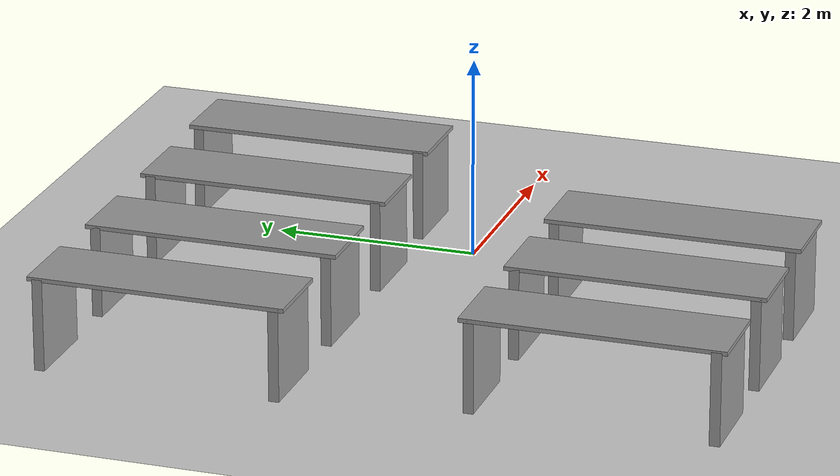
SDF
<sdf version="1.6">
 <world name="default">
  <model name="ground_plane">
   <static>1</static>
   <link name="link">
    <collision name="collision">
     <geometry><plane><normal>0 0 1</normal><size>100 100</size></plane></geometry>
     <surface><friction><ode><mu>100</mu><mu2>50</mu2></ode></friction></surface>
    </collision>
    <visual name="visual">
     <cast_shadows>0</cast_shadows>
     <geometry><plane><normal>0 0 1</normal><size>100 100</size></plane></geometry>
     <material>
      <script><uri>file://media/materials/scripts/gazebo.material</uri><name>Gazebo/Grey</name></script>
     </material>
    </visual>
   </link>
  </model>
  <model name="table_clone_2_clone_1">
   <link name="link">
    <inertial>
     <inertia><ixx>1</ixx><ixy>0</ixy><ixz>0</ixz><iyy>1</iyy><iyz>0</iyz><izz>1</izz></inertia>
     <mass>10</mass>
    </inertial>
    <visual name="visual1">
     <pose>0 0 0.95 0 -0 0</pose>
     <geometry><box><size>2.5 0.8 0.04</size></box></geometry>
     <material>
      <script><uri>file://media/materials/scripts/gazebo.material</uri><name>Gazebo/Grey</name></script>
      <ambient>1 1 1 1</ambient>
      <diffuse>1 1 1 1</diffuse>
      <specular>0.2 0.2 0.2 1</specular>
      <emissive>0 0 0 1</emissive>
      <shader type="vertex"><normal_map>__default__</normal_map></shader>
     </material>
    </visual>
    <visual name="ModelPreview_1::link::visual_12">
     <pose>1.15 0 0.5 0 -0 0</pose>
     <geometry><box><size>0.1 0.8 0.9</size></box></geometry>
     <material>
      <script><uri>file://media/materials/scripts/gazebo.material</uri><name>Gazebo/Grey</name></script>
      <ambient>0.3 0.3 0.3 1</ambient>
      <diffuse>0.7 0.7 0.7 1</diffuse>
      <specular>0.01 0.01 0.01 1</specular>
      <emissive>0 0 0 1</emissive>
      <shader type="vertex"><normal_map>__default__</normal_map></shader>
     </material>
    </visual>
    <visual name="back_right_leg">
     <pose>-1.15 0 0.5 0 -0 0</pose>
     <geometry><box><size>0.1 0.8 0.9</size></box></geometry>
     <material>
      <script><uri>file://media/materials/scripts/gazebo.material</uri><name>Gazebo/Grey</name></script>
      <ambient>0.3 0.3 0.3 1</ambient>
      <diffuse>0.7 0.7 0.7 1</diffuse>
      <specular>0.01 0.01 0.01 1</specular>
      <emissive>0 0 0 1</emissive>
      <shader type="vertex"><normal_map>__default__</normal_map></shader>
     </material>
    </visual>
    <collision name="collision_7">
     <pose>1.15 0 0.5 0 -0 0</pose>
     <geometry><box><size>0.1 0.8 0.9</size></box></geometry>
     <surface>
      <friction>
       <ode><mu>1</mu><mu2>1</mu2><fdir1>0 0 0</fdir1><slip1>0</slip1><slip2>0</slip2></ode>
       <torsional>
        <coefficient>1</coefficient>
        <patch_radius>0</patch_radius>
        <surface_radius>0</surface_radius>
        <use_patch_radius>1</use_patch_radius>
        <ode><slip>0</slip></ode>
       </torsional>
      </friction>
      <bounce><restitution_coefficient>0</restitution_coefficient><threshold>1e+06</threshold></bounce>
      <contact>
       <collide_without_contact>0</collide_without_contact>
       <collide_without_contact_bitmask>1</collide_without_contact_bitmask>
       <collide_bitmask>1</collide_bitmask>
       <ode>
        <soft_cfm>0</soft_cfm>
        <soft_erp>0.2</soft_erp>
        <kp>1e+13</kp>
        <kd>1</kd>
        <max_vel>0.01</max_vel>
        <min_depth>0</min_depth>
       </ode>
       <bullet>
        <split_impulse>1</split_impulse>
        <split_impulse_penetration_threshold>-0.01</split_impulse_penetration_threshold>
        <soft_cfm>0</soft_cfm>
        <soft_erp>0.2</soft_erp>
        <kp>1e+13</kp>
        <kd>1</kd>
       </bullet>
      </contact>
     </surface>
    </collision>
    <collision name="surface">
     <pose>0 0 0.95 0 -0 0</pose>
     <geometry><box><size>2.5 0.8 0.03</size></box></geometry>
     <surface>
      <friction>
       <ode><mu>0.6</mu><mu2>0.6</mu2><fdir1>0 0 0</fdir1><slip1>0</slip1><slip2>0</slip2></ode>
       <torsional>
        <coefficient>1</coefficient>
        <patch_radius>0</patch_radius>
        <surface_radius>0</surface_radius>
        <use_patch_radius>1</use_patch_radius>
        <ode><slip>0</slip></ode>
       </torsional>
      </friction>
      <bounce><restitution_coefficient>0</restitution_coefficient><threshold>1e+06</threshold></bounce>
      <contact>
       <collide_without_contact>0</collide_without_contact>
       <collide_without_contact_bitmask>1</collide_without_contact_bitmask>
       <collide_bitmask>1</collide_bitmask>
       <ode>
        <soft_cfm>0</soft_cfm>
        <soft_erp>0.2</soft_erp>
        <kp>1e+13</kp>
        <kd>1</kd>
        <max_vel>0.01</max_vel>
        <min_depth>0</min_depth>
       </ode>
       <bullet>
        <split_impulse>1</split_impulse>
        <split_impulse_penetration_threshold>-0.01</split_impulse_penetration_threshold>
        <soft_cfm>0</soft_cfm>
        <soft_erp>0.2</soft_erp>
        <kp>1e+13</kp>
        <kd>1</kd>
       </bullet>
      </contact>
     </surface>
    </collision>
    <collision name="collision_5">
     <pose>-1.15 0 0.5 0 -0 0</pose>
     <geometry><box><size>0.1 0.8 0.9</size></box></geometry>
     <surface>
      <friction>
       <ode><mu>1</mu><mu2>1</mu2><fdir1>0 0 0</fdir1><slip1>0</slip1><slip2>0</slip2></ode>
       <torsional>
        <coefficient>1</coefficient>
        <patch_radius>0</patch_radius>
        <surface_radius>0</surface_radius>
        <use_patch_radius>1</use_patch_radius>
        <ode><slip>0</slip></ode>
       </torsional>
      </friction>
      <bounce><restitution_coefficient>0</restitution_coefficient><threshold>1e+06</threshold></bounce>
      <contact>
       <collide_without_contact>0</collide_without_contact>
       <collide_without_contact_bitmask>1</collide_without_contact_bitmask>
       <collide_bitmask>1</collide_bitmask>
       <ode>
        <soft_cfm>0</soft_cfm>
        <soft_erp>0.2</soft_erp>
        <kp>1e+13</kp>
        <kd>1</kd>
        <max_vel>0.01</max_vel>
        <min_depth>0</min_depth>
       </ode>
       <bullet>
        <split_impulse>1</split_impulse>
        <split_impulse_penetration_threshold>-0.01</split_impulse_penetration_threshold>
        <soft_cfm>0</soft_cfm>
        <soft_erp>0.2</soft_erp>
        <kp>1e+13</kp>
        <kd>1</kd>
       </bullet>
      </contact>
     </surface>
    </collision>
   </link>
   <static>0</static>
   <pose>-0.813096 1.74776 -0.050005 -1.2e-05 0 -1.57001</pose>
  </model>
  <model name="table_clone_2_clone_3">
   <link name="link">
    <inertial>
     <inertia><ixx>1</ixx><ixy>0</ixy><ixz>0</ixz><iyy>1</iyy><iyz>0</iyz><izz>1</izz></inertia>
     <mass>10</mass>
    </inertial>
    <visual name="visual1">
     <pose>0 0 0.95 0 -0 0</pose>
     <geometry><box><size>2.5 0.8 0.04</size></box></geometry>
     <material>
      <script><uri>file://media/materials/scripts/gazebo.material</uri><name>Gazebo/Grey</name></script>
      <ambient>1 1 1 1</ambient>
      <diffuse>1 1 1 1</diffuse>
      <specular>0.2 0.2 0.2 1</specular>
      <emissive>0 0 0 1</emissive>
      <shader type="vertex"><normal_map>__default__</normal_map></shader>
     </material>
    </visual>
    <visual name="ModelPreview_1::link::visual_12">
     <pose>1.15 0 0.5 0 -0 0</pose>
     <geometry><box><size>0.1 0.8 0.9</size></box></geometry>
     <material>
      <script><uri>file://media/materials/scripts/gazebo.material</uri><name>Gazebo/Grey</name></script>
      <ambient>0.3 0.3 0.3 1</ambient>
      <diffuse>0.7 0.7 0.7 1</diffuse>
      <specular>0.01 0.01 0.01 1</specular>
      <emissive>0 0 0 1</emissive>
      <shader type="vertex"><normal_map>__default__</normal_map></shader>
     </material>
    </visual>
    <visual name="back_right_leg">
     <pose>-1.15 0 0.5 0 -0 0</pose>
     <geometry><box><size>0.1 0.8 0.9</size></box></geometry>
     <material>
      <script><uri>file://media/materials/scripts/gazebo.material</uri><name>Gazebo/Grey</name></script>
      <ambient>0.3 0.3 0.3 1</ambient>
      <diffuse>0.7 0.7 0.7 1</diffuse>
      <specular>0.01 0.01 0.01 1</specular>
      <emissive>0 0 0 1</emissive>
      <shader type="vertex"><normal_map>__default__</normal_map></shader>
     </material>
    </visual>
    <collision name="collision_7">
     <pose>1.15 0 0.5 0 -0 0</pose>
     <geometry><box><size>0.1 0.8 0.9</size></box></geometry>
     <surface>
      <friction>
       <ode><mu>1</mu><mu2>1</mu2><fdir1>0 0 0</fdir1><slip1>0</slip1><slip2>0</slip2></ode>
       <torsional>
        <coefficient>1</coefficient>
        <patch_radius>0</patch_radius>
        <surface_radius>0</surface_radius>
        <use_patch_radius>1</use_patch_radius>
        <ode><slip>0</slip></ode>
       </torsional>
      </friction>
      <bounce><restitution_coefficient>0</restitution_coefficient><threshold>1e+06</threshold></bounce>
      <contact>
       <collide_without_contact>0</collide_without_contact>
       <collide_without_contact_bitmask>1</collide_without_contact_bitmask>
       <collide_bitmask>1</collide_bitmask>
       <ode>
        <soft_cfm>0</soft_cfm>
        <soft_erp>0.2</soft_erp>
        <kp>1e+13</kp>
        <kd>1</kd>
        <max_vel>0.01</max_vel>
        <min_depth>0</min_depth>
       </ode>
       <bullet>
        <split_impulse>1</split_impulse>
        <split_impulse_penetration_threshold>-0.01</split_impulse_penetration_threshold>
        <soft_cfm>0</soft_cfm>
        <soft_erp>0.2</soft_erp>
        <kp>1e+13</kp>
        <kd>1</kd>
       </bullet>
      </contact>
     </surface>
    </collision>
    <collision name="surface">
     <pose>0 0 0.95 0 -0 0</pose>
     <geometry><box><size>2.5 0.8 0.03</size></box></geometry>
     <surface>
      <friction>
       <ode><mu>0.6</mu><mu2>0.6</mu2><fdir1>0 0 0</fdir1><slip1>0</slip1><slip2>0</slip2></ode>
       <torsional>
        <coefficient>1</coefficient>
        <patch_radius>0</patch_radius>
        <surface_radius>0</surface_radius>
        <use_patch_radius>1</use_patch_radius>
        <ode><slip>0</slip></ode>
       </torsional>
      </friction>
      <bounce><restitution_coefficient>0</restitution_coefficient><threshold>1e+06</threshold></bounce>
      <contact>
       <collide_without_contact>0</collide_without_contact>
       <collide_without_contact_bitmask>1</collide_without_contact_bitmask>
       <collide_bitmask>1</collide_bitmask>
       <ode>
        <soft_cfm>0</soft_cfm>
        <soft_erp>0.2</soft_erp>
        <kp>1e+13</kp>
        <kd>1</kd>
        <max_vel>0.01</max_vel>
        <min_depth>0</min_depth>
       </ode>
       <bullet>
        <split_impulse>1</split_impulse>
        <split_impulse_penetration_threshold>-0.01</split_impulse_penetration_threshold>
        <soft_cfm>0</soft_cfm>
        <soft_erp>0.2</soft_erp>
        <kp>1e+13</kp>
        <kd>1</kd>
       </bullet>
      </contact>
     </surface>
    </collision>
    <collision name="collision_5">
     <pose>-1.15 0 0.5 0 -0 0</pose>
     <geometry><box><size>0.1 0.8 0.9</size></box></geometry>
     <surface>
      <friction>
       <ode><mu>1</mu><mu2>1</mu2><fdir1>0 0 0</fdir1><slip1>0</slip1><slip2>0</slip2></ode>
       <torsional>
        <coefficient>1</coefficient>
        <patch_radius>0</patch_radius>
        <surface_radius>0</surface_radius>
        <use_patch_radius>1</use_patch_radius>
        <ode><slip>0</slip></ode>
       </torsional>
      </friction>
      <bounce><restitution_coefficient>0</restitution_coefficient><threshold>1e+06</threshold></bounce>
      <contact>
       <collide_without_contact>0</collide_without_contact>
       <collide_without_contact_bitmask>1</collide_without_contact_bitmask>
       <collide_bitmask>1</collide_bitmask>
       <ode>
        <soft_cfm>0</soft_cfm>
        <soft_erp>0.2</soft_erp>
        <kp>1e+13</kp>
        <kd>1</kd>
        <max_vel>0.01</max_vel>
        <min_depth>0</min_depth>
       </ode>
       <bullet>
        <split_impulse>1</split_impulse>
        <split_impulse_penetration_threshold>-0.01</split_impulse_penetration_threshold>
        <soft_cfm>0</soft_cfm>
        <soft_erp>0.2</soft_erp>
        <kp>1e+13</kp>
        <kd>1</kd>
       </bullet>
      </contact>
     </surface>
    </collision>
   </link>
   <static>0</static>
   <pose>-2.24697 1.73839 -0.050008 -2e-05 -0 -1.57001</pose>
  </model>
  <model name="table_clone_2_clone_clone_2">
   <link name="link">
    <inertial>
     <inertia><ixx>1</ixx><ixy>0</ixy><ixz>0</ixz><iyy>1</iyy><iyz>0</iyz><izz>1</izz></inertia>
     <mass>10</mass>
    </inertial>
    <visual name="visual1">
     <pose>0 0 0.95 0 -0 0</pose>
     <geometry><box><size>2.5 0.8 0.04</size></box></geometry>
     <material>
      <script><uri>file://media/materials/scripts/gazebo.material</uri><name>Gazebo/Grey</name></script>
      <ambient>1 1 1 1</ambient>
      <diffuse>1 1 1 1</diffuse>
      <specular>0.2 0.2 0.2 1</specular>
      <emissive>0 0 0 1</emissive>
      <shader type="vertex"><normal_map>__default__</normal_map></shader>
     </material>
    </visual>
    <visual name="ModelPreview_1::link::visual_12">
     <pose>1.15 0 0.5 0 -0 0</pose>
     <geometry><box><size>0.1 0.8 0.9</size></box></geometry>
     <material>
      <script><uri>file://media/materials/scripts/gazebo.material</uri><name>Gazebo/Grey</name></script>
      <ambient>0.3 0.3 0.3 1</ambient>
      <diffuse>0.7 0.7 0.7 1</diffuse>
      <specular>0.01 0.01 0.01 1</specular>
      <emissive>0 0 0 1</emissive>
      <shader type="vertex"><normal_map>__default__</normal_map></shader>
     </material>
    </visual>
    <visual name="back_right_leg">
     <pose>-1.15 0 0.5 0 -0 0</pose>
     <geometry><box><size>0.1 0.8 0.9</size></box></geometry>
     <material>
      <script><uri>file://media/materials/scripts/gazebo.material</uri><name>Gazebo/Grey</name></script>
      <ambient>0.3 0.3 0.3 1</ambient>
      <diffuse>0.7 0.7 0.7 1</diffuse>
      <specular>0.01 0.01 0.01 1</specular>
      <emissive>0 0 0 1</emissive>
      <shader type="vertex"><normal_map>__default__</normal_map></shader>
     </material>
    </visual>
    <collision name="collision_7">
     <pose>1.15 0 0.5 0 -0 0</pose>
     <geometry><box><size>0.1 0.8 0.9</size></box></geometry>
     <surface>
      <friction>
       <ode><mu>1</mu><mu2>1</mu2><fdir1>0 0 0</fdir1><slip1>0</slip1><slip2>0</slip2></ode>
       <torsional>
        <coefficient>1</coefficient>
        <patch_radius>0</patch_radius>
        <surface_radius>0</surface_radius>
        <use_patch_radius>1</use_patch_radius>
        <ode><slip>0</slip></ode>
       </torsional>
      </friction>
      <bounce><restitution_coefficient>0</restitution_coefficient><threshold>1e+06</threshold></bounce>
      <contact>
       <collide_without_contact>0</collide_without_contact>
       <collide_without_contact_bitmask>1</collide_without_contact_bitmask>
       <collide_bitmask>1</collide_bitmask>
       <ode>
        <soft_cfm>0</soft_cfm>
        <soft_erp>0.2</soft_erp>
        <kp>1e+13</kp>
        <kd>1</kd>
        <max_vel>0.01</max_vel>
        <min_depth>0</min_depth>
       </ode>
       <bullet>
        <split_impulse>1</split_impulse>
        <split_impulse_penetration_threshold>-0.01</split_impulse_penetration_threshold>
        <soft_cfm>0</soft_cfm>
        <soft_erp>0.2</soft_erp>
        <kp>1e+13</kp>
        <kd>1</kd>
       </bullet>
      </contact>
     </surface>
    </collision>
    <collision name="surface">
     <pose>0 0 0.95 0 -0 0</pose>
     <geometry><box><size>2.5 0.8 0.03</size></box></geometry>
     <surface>
      <friction>
       <ode><mu>0.6</mu><mu2>0.6</mu2><fdir1>0 0 0</fdir1><slip1>0</slip1><slip2>0</slip2></ode>
       <torsional>
        <coefficient>1</coefficient>
        <patch_radius>0</patch_radius>
        <surface_radius>0</surface_radius>
        <use_patch_radius>1</use_patch_radius>
        <ode><slip>0</slip></ode>
       </torsional>
      </friction>
      <bounce><restitution_coefficient>0</restitution_coefficient><threshold>1e+06</threshold></bounce>
      <contact>
       <collide_without_contact>0</collide_without_contact>
       <collide_without_contact_bitmask>1</collide_without_contact_bitmask>
       <collide_bitmask>1</collide_bitmask>
       <ode>
        <soft_cfm>0</soft_cfm>
        <soft_erp>0.2</soft_erp>
        <kp>1e+13</kp>
        <kd>1</kd>
        <max_vel>0.01</max_vel>
        <min_depth>0</min_depth>
       </ode>
       <bullet>
        <split_impulse>1</split_impulse>
        <split_impulse_penetration_threshold>-0.01</split_impulse_penetration_threshold>
        <soft_cfm>0</soft_cfm>
        <soft_erp>0.2</soft_erp>
        <kp>1e+13</kp>
        <kd>1</kd>
       </bullet>
      </contact>
     </surface>
    </collision>
    <collision name="collision_5">
     <pose>-1.15 0 0.5 0 -0 0</pose>
     <geometry><box><size>0.1 0.8 0.9</size></box></geometry>
     <surface>
      <friction>
       <ode><mu>1</mu><mu2>1</mu2><fdir1>0 0 0</fdir1><slip1>0</slip1><slip2>0</slip2></ode>
       <torsional>
        <coefficient>1</coefficient>
        <patch_radius>0</patch_radius>
        <surface_radius>0</surface_radius>
        <use_patch_radius>1</use_patch_radius>
        <ode><slip>0</slip></ode>
       </torsional>
      </friction>
      <bounce><restitution_coefficient>0</restitution_coefficient><threshold>1e+06</threshold></bounce>
      <contact>
       <collide_without_contact>0</collide_without_contact>
       <collide_without_contact_bitmask>1</collide_without_contact_bitmask>
       <collide_bitmask>1</collide_bitmask>
       <ode>
        <soft_cfm>0</soft_cfm>
        <soft_erp>0.2</soft_erp>
        <kp>1e+13</kp>
        <kd>1</kd>
        <max_vel>0.01</max_vel>
        <min_depth>0</min_depth>
       </ode>
       <bullet>
        <split_impulse>1</split_impulse>
        <split_impulse_penetration_threshold>-0.01</split_impulse_penetration_threshold>
        <soft_cfm>0</soft_cfm>
        <soft_erp>0.2</soft_erp>
        <kp>1e+13</kp>
        <kd>1</kd>
       </bullet>
      </contact>
     </surface>
    </collision>
   </link>
   <static>0</static>
   <pose>0.614992 1.79495 -0.050008 -2e-05 -0 -1.57008</pose>
  </model>
  <model name="table_clone_2_clone_clone_2_clone">
   <link name="link">
    <inertial>
     <inertia><ixx>1</ixx><ixy>0</ixy><ixz>0</ixz><iyy>1</iyy><iyz>0</iyz><izz>1</izz></inertia>
     <mass>10</mass>
    </inertial>
    <visual name="visual1">
     <pose>0 0 0.95 0 -0 0</pose>
     <geometry><box><size>2.5 0.8 0.04</size></box></geometry>
     <material>
      <script><uri>file://media/materials/scripts/gazebo.material</uri><name>Gazebo/Grey</name></script>
      <ambient>1 1 1 1</ambient>
      <diffuse>1 1 1 1</diffuse>
      <specular>0.2 0.2 0.2 1</specular>
      <emissive>0 0 0 1</emissive>
      <shader type="vertex"><normal_map>__default__</normal_map></shader>
     </material>
    </visual>
    <visual name="ModelPreview_1::link::visual_12">
     <pose>1.15 0 0.5 0 -0 0</pose>
     <geometry><box><size>0.1 0.8 0.9</size></box></geometry>
     <material>
      <script><uri>file://media/materials/scripts/gazebo.material</uri><name>Gazebo/Grey</name></script>
      <ambient>0.3 0.3 0.3 1</ambient>
      <diffuse>0.7 0.7 0.7 1</diffuse>
      <specular>0.01 0.01 0.01 1</specular>
      <emissive>0 0 0 1</emissive>
      <shader type="vertex"><normal_map>__default__</normal_map></shader>
     </material>
    </visual>
    <visual name="back_right_leg">
     <pose>-1.15 0 0.5 0 -0 0</pose>
     <geometry><box><size>0.1 0.8 0.9</size></box></geometry>
     <material>
      <script><uri>file://media/materials/scripts/gazebo.material</uri><name>Gazebo/Grey</name></script>
      <ambient>0.3 0.3 0.3 1</ambient>
      <diffuse>0.7 0.7 0.7 1</diffuse>
      <specular>0.01 0.01 0.01 1</specular>
      <emissive>0 0 0 1</emissive>
      <shader type="vertex"><normal_map>__default__</normal_map></shader>
     </material>
    </visual>
    <collision name="collision_7">
     <pose>1.15 0 0.5 0 -0 0</pose>
     <geometry><box><size>0.1 0.8 0.9</size></box></geometry>
     <surface>
      <friction>
       <ode><mu>1</mu><mu2>1</mu2><fdir1>0 0 0</fdir1><slip1>0</slip1><slip2>0</slip2></ode>
       <torsional>
        <coefficient>1</coefficient>
        <patch_radius>0</patch_radius>
        <surface_radius>0</surface_radius>
        <use_patch_radius>1</use_patch_radius>
        <ode><slip>0</slip></ode>
       </torsional>
      </friction>
      <bounce><restitution_coefficient>0</restitution_coefficient><threshold>1e+06</threshold></bounce>
      <contact>
       <collide_without_contact>0</collide_without_contact>
       <collide_without_contact_bitmask>1</collide_without_contact_bitmask>
       <collide_bitmask>1</collide_bitmask>
       <ode>
        <soft_cfm>0</soft_cfm>
        <soft_erp>0.2</soft_erp>
        <kp>1e+13</kp>
        <kd>1</kd>
        <max_vel>0.01</max_vel>
        <min_depth>0</min_depth>
       </ode>
       <bullet>
        <split_impulse>1</split_impulse>
        <split_impulse_penetration_threshold>-0.01</split_impulse_penetration_threshold>
        <soft_cfm>0</soft_cfm>
        <soft_erp>0.2</soft_erp>
        <kp>1e+13</kp>
        <kd>1</kd>
       </bullet>
      </contact>
     </surface>
    </collision>
    <collision name="surface">
     <pose>0 0 0.95 0 -0 0</pose>
     <geometry><box><size>2.5 0.8 0.03</size></box></geometry>
     <surface>
      <friction>
       <ode><mu>0.6</mu><mu2>0.6</mu2><fdir1>0 0 0</fdir1><slip1>0</slip1><slip2>0</slip2></ode>
       <torsional>
        <coefficient>1</coefficient>
        <patch_radius>0</patch_radius>
        <surface_radius>0</surface_radius>
        <use_patch_radius>1</use_patch_radius>
        <ode><slip>0</slip></ode>
       </torsional>
      </friction>
      <bounce><restitution_coefficient>0</restitution_coefficient><threshold>1e+06</threshold></bounce>
      <contact>
       <collide_without_contact>0</collide_without_contact>
       <collide_without_contact_bitmask>1</collide_without_contact_bitmask>
       <collide_bitmask>1</collide_bitmask>
       <ode>
        <soft_cfm>0</soft_cfm>
        <soft_erp>0.2</soft_erp>
        <kp>1e+13</kp>
        <kd>1</kd>
        <max_vel>0.01</max_vel>
        <min_depth>0</min_depth>
       </ode>
       <bullet>
        <split_impulse>1</split_impulse>
        <split_impulse_penetration_threshold>-0.01</split_impulse_penetration_threshold>
        <soft_cfm>0</soft_cfm>
        <soft_erp>0.2</soft_erp>
        <kp>1e+13</kp>
        <kd>1</kd>
       </bullet>
      </contact>
     </surface>
    </collision>
    <collision name="collision_5">
     <pose>-1.15 0 0.5 0 -0 0</pose>
     <geometry><box><size>0.1 0.8 0.9</size></box></geometry>
     <surface>
      <friction>
       <ode><mu>1</mu><mu2>1</mu2><fdir1>0 0 0</fdir1><slip1>0</slip1><slip2>0</slip2></ode>
       <torsional>
        <coefficient>1</coefficient>
        <patch_radius>0</patch_radius>
        <surface_radius>0</surface_radius>
        <use_patch_radius>1</use_patch_radius>
        <ode><slip>0</slip></ode>
       </torsional>
      </friction>
      <bounce><restitution_coefficient>0</restitution_coefficient><threshold>1e+06</threshold></bounce>
      <contact>
       <collide_without_contact>0</collide_without_contact>
       <collide_without_contact_bitmask>1</collide_without_contact_bitmask>
       <collide_bitmask>1</collide_bitmask>
       <ode>
        <soft_cfm>0</soft_cfm>
        <soft_erp>0.2</soft_erp>
        <kp>1e+13</kp>
        <kd>1</kd>
        <max_vel>0.01</max_vel>
        <min_depth>0</min_depth>
       </ode>
       <bullet>
        <split_impulse>1</split_impulse>
        <split_impulse_penetration_threshold>-0.01</split_impulse_penetration_threshold>
        <soft_cfm>0</soft_cfm>
        <soft_erp>0.2</soft_erp>
        <kp>1e+13</kp>
        <kd>1</kd>
       </bullet>
      </contact>
     </surface>
    </collision>
   </link>
   <static>0</static>
   <pose>-3.63481 1.7494 -0.050008 -2e-05 -0 -1.57008</pose>
  </model>
  <model name="table_clone_2_clone_clone_2_clone_0">
   <link name="link">
    <inertial>
     <inertia><ixx>1</ixx><ixy>0</ixy><ixz>0</ixz><iyy>1</iyy><iyz>0</iyz><izz>1</izz></inertia>
     <mass>10</mass>
    </inertial>
    <visual name="visual1">
     <pose>0 0 0.95 0 -0 0</pose>
     <geometry><box><size>2.5 0.8 0.04</size></box></geometry>
     <material>
      <script><uri>file://media/materials/scripts/gazebo.material</uri><name>Gazebo/Grey</name></script>
      <ambient>1 1 1 1</ambient>
      <diffuse>1 1 1 1</diffuse>
      <specular>0.2 0.2 0.2 1</specular>
      <emissive>0 0 0 1</emissive>
      <shader type="vertex"><normal_map>__default__</normal_map></shader>
     </material>
    </visual>
    <visual name="ModelPreview_1::link::visual_12">
     <pose>1.15 0 0.5 0 -0 0</pose>
     <geometry><box><size>0.1 0.8 0.9</size></box></geometry>
     <material>
      <script><uri>file://media/materials/scripts/gazebo.material</uri><name>Gazebo/Grey</name></script>
      <ambient>0.3 0.3 0.3 1</ambient>
      <diffuse>0.7 0.7 0.7 1</diffuse>
      <specular>0.01 0.01 0.01 1</specular>
      <emissive>0 0 0 1</emissive>
      <shader type="vertex"><normal_map>__default__</normal_map></shader>
     </material>
    </visual>
    <visual name="back_right_leg">
     <pose>-1.15 0 0.5 0 -0 0</pose>
     <geometry><box><size>0.1 0.8 0.9</size></box></geometry>
     <material>
      <script><uri>file://media/materials/scripts/gazebo.material</uri><name>Gazebo/Grey</name></script>
      <ambient>0.3 0.3 0.3 1</ambient>
      <diffuse>0.7 0.7 0.7 1</diffuse>
      <specular>0.01 0.01 0.01 1</specular>
      <emissive>0 0 0 1</emissive>
      <shader type="vertex"><normal_map>__default__</normal_map></shader>
     </material>
    </visual>
    <collision name="collision_7">
     <pose>1.15 0 0.5 0 -0 0</pose>
     <geometry><box><size>0.1 0.8 0.9</size></box></geometry>
     <surface>
      <friction>
       <ode><mu>1</mu><mu2>1</mu2><fdir1>0 0 0</fdir1><slip1>0</slip1><slip2>0</slip2></ode>
       <torsional>
        <coefficient>1</coefficient>
        <patch_radius>0</patch_radius>
        <surface_radius>0</surface_radius>
        <use_patch_radius>1</use_patch_radius>
        <ode><slip>0</slip></ode>
       </torsional>
      </friction>
      <bounce><restitution_coefficient>0</restitution_coefficient><threshold>1e+06</threshold></bounce>
      <contact>
       <collide_without_contact>0</collide_without_contact>
       <collide_without_contact_bitmask>1</collide_without_contact_bitmask>
       <collide_bitmask>1</collide_bitmask>
       <ode>
        <soft_cfm>0</soft_cfm>
        <soft_erp>0.2</soft_erp>
        <kp>1e+13</kp>
        <kd>1</kd>
        <max_vel>0.01</max_vel>
        <min_depth>0</min_depth>
       </ode>
       <bullet>
        <split_impulse>1</split_impulse>
        <split_impulse_penetration_threshold>-0.01</split_impulse_penetration_threshold>
        <soft_cfm>0</soft_cfm>
        <soft_erp>0.2</soft_erp>
        <kp>1e+13</kp>
        <kd>1</kd>
       </bullet>
      </contact>
     </surface>
    </collision>
    <collision name="surface">
     <pose>0 0 0.95 0 -0 0</pose>
     <geometry><box><size>2.5 0.8 0.03</size></box></geometry>
     <surface>
      <friction>
       <ode><mu>0.6</mu><mu2>0.6</mu2><fdir1>0 0 0</fdir1><slip1>0</slip1><slip2>0</slip2></ode>
       <torsional>
        <coefficient>1</coefficient>
        <patch_radius>0</patch_radius>
        <surface_radius>0</surface_radius>
        <use_patch_radius>1</use_patch_radius>
        <ode><slip>0</slip></ode>
       </torsional>
      </friction>
      <bounce><restitution_coefficient>0</restitution_coefficient><threshold>1e+06</threshold></bounce>
      <contact>
       <collide_without_contact>0</collide_without_contact>
       <collide_without_contact_bitmask>1</collide_without_contact_bitmask>
       <collide_bitmask>1</collide_bitmask>
       <ode>
        <soft_cfm>0</soft_cfm>
        <soft_erp>0.2</soft_erp>
        <kp>1e+13</kp>
        <kd>1</kd>
        <max_vel>0.01</max_vel>
        <min_depth>0</min_depth>
       </ode>
       <bullet>
        <split_impulse>1</split_impulse>
        <split_impulse_penetration_threshold>-0.01</split_impulse_penetration_threshold>
        <soft_cfm>0</soft_cfm>
        <soft_erp>0.2</soft_erp>
        <kp>1e+13</kp>
        <kd>1</kd>
       </bullet>
      </contact>
     </surface>
    </collision>
    <collision name="collision_5">
     <pose>-1.15 0 0.5 0 -0 0</pose>
     <geometry><box><size>0.1 0.8 0.9</size></box></geometry>
     <surface>
      <friction>
       <ode><mu>1</mu><mu2>1</mu2><fdir1>0 0 0</fdir1><slip1>0</slip1><slip2>0</slip2></ode>
       <torsional>
        <coefficient>1</coefficient>
        <patch_radius>0</patch_radius>
        <surface_radius>0</surface_radius>
        <use_patch_radius>1</use_patch_radius>
        <ode><slip>0</slip></ode>
       </torsional>
      </friction>
      <bounce><restitution_coefficient>0</restitution_coefficient><threshold>1e+06</threshold></bounce>
      <contact>
       <collide_without_contact>0</collide_without_contact>
       <collide_without_contact_bitmask>1</collide_without_contact_bitmask>
       <collide_bitmask>1</collide_bitmask>
       <ode>
        <soft_cfm>0</soft_cfm>
        <soft_erp>0.2</soft_erp>
        <kp>1e+13</kp>
        <kd>1</kd>
        <max_vel>0.01</max_vel>
        <min_depth>0</min_depth>
       </ode>
       <bullet>
        <split_impulse>1</split_impulse>
        <split_impulse_penetration_threshold>-0.01</split_impulse_penetration_threshold>
        <soft_cfm>0</soft_cfm>
        <soft_erp>0.2</soft_erp>
        <kp>1e+13</kp>
        <kd>1</kd>
       </bullet>
      </contact>
     </surface>
    </collision>
   </link>
   <static>0</static>
   <pose>-2.01182 -2.31963 -0.050008 -2e-05 -0 -1.57008</pose>
  </model>
  <model name="table_clone_2_clone_clone_2_clone_1">
   <link name="link">
    <inertial>
     <inertia><ixx>1</ixx><ixy>0</ixy><ixz>0</ixz><iyy>1</iyy><iyz>0</iyz><izz>1</izz></inertia>
     <mass>10</mass>
    </inertial>
    <visual name="visual1">
     <pose>0 0 0.95 0 -0 0</pose>
     <geometry><box><size>2.5 0.8 0.04</size></box></geometry>
     <material>
      <script><uri>file://media/materials/scripts/gazebo.material</uri><name>Gazebo/Grey</name></script>
      <ambient>1 1 1 1</ambient>
      <diffuse>1 1 1 1</diffuse>
      <specular>0.2 0.2 0.2 1</specular>
      <emissive>0 0 0 1</emissive>
      <shader type="vertex"><normal_map>__default__</normal_map></shader>
     </material>
    </visual>
    <visual name="ModelPreview_1::link::visual_12">
     <pose>1.15 0 0.5 0 -0 0</pose>
     <geometry><box><size>0.1 0.8 0.9</size></box></geometry>
     <material>
      <script><uri>file://media/materials/scripts/gazebo.material</uri><name>Gazebo/Grey</name></script>
      <ambient>0.3 0.3 0.3 1</ambient>
      <diffuse>0.7 0.7 0.7 1</diffuse>
      <specular>0.01 0.01 0.01 1</specular>
      <emissive>0 0 0 1</emissive>
      <shader type="vertex"><normal_map>__default__</normal_map></shader>
     </material>
    </visual>
    <visual name="back_right_leg">
     <pose>-1.15 0 0.5 0 -0 0</pose>
     <geometry><box><size>0.1 0.8 0.9</size></box></geometry>
     <material>
      <script><uri>file://media/materials/scripts/gazebo.material</uri><name>Gazebo/Grey</name></script>
      <ambient>0.3 0.3 0.3 1</ambient>
      <diffuse>0.7 0.7 0.7 1</diffuse>
      <specular>0.01 0.01 0.01 1</specular>
      <emissive>0 0 0 1</emissive>
      <shader type="vertex"><normal_map>__default__</normal_map></shader>
     </material>
    </visual>
    <collision name="collision_7">
     <pose>1.15 0 0.5 0 -0 0</pose>
     <geometry><box><size>0.1 0.8 0.9</size></box></geometry>
     <surface>
      <friction>
       <ode><mu>1</mu><mu2>1</mu2><fdir1>0 0 0</fdir1><slip1>0</slip1><slip2>0</slip2></ode>
       <torsional>
        <coefficient>1</coefficient>
        <patch_radius>0</patch_radius>
        <surface_radius>0</surface_radius>
        <use_patch_radius>1</use_patch_radius>
        <ode><slip>0</slip></ode>
       </torsional>
      </friction>
      <bounce><restitution_coefficient>0</restitution_coefficient><threshold>1e+06</threshold></bounce>
      <contact>
       <collide_without_contact>0</collide_without_contact>
       <collide_without_contact_bitmask>1</collide_without_contact_bitmask>
       <collide_bitmask>1</collide_bitmask>
       <ode>
        <soft_cfm>0</soft_cfm>
        <soft_erp>0.2</soft_erp>
        <kp>1e+13</kp>
        <kd>1</kd>
        <max_vel>0.01</max_vel>
        <min_depth>0</min_depth>
       </ode>
       <bullet>
        <split_impulse>1</split_impulse>
        <split_impulse_penetration_threshold>-0.01</split_impulse_penetration_threshold>
        <soft_cfm>0</soft_cfm>
        <soft_erp>0.2</soft_erp>
        <kp>1e+13</kp>
        <kd>1</kd>
       </bullet>
      </contact>
     </surface>
    </collision>
    <collision name="surface">
     <pose>0 0 0.95 0 -0 0</pose>
     <geometry><box><size>2.5 0.8 0.03</size></box></geometry>
     <surface>
      <friction>
       <ode><mu>0.6</mu><mu2>0.6</mu2><fdir1>0 0 0</fdir1><slip1>0</slip1><slip2>0</slip2></ode>
       <torsional>
        <coefficient>1</coefficient>
        <patch_radius>0</patch_radius>
        <surface_radius>0</surface_radius>
        <use_patch_radius>1</use_patch_radius>
        <ode><slip>0</slip></ode>
       </torsional>
      </friction>
      <bounce><restitution_coefficient>0</restitution_coefficient><threshold>1e+06</threshold></bounce>
      <contact>
       <collide_without_contact>0</collide_without_contact>
       <collide_without_contact_bitmask>1</collide_without_contact_bitmask>
       <collide_bitmask>1</collide_bitmask>
       <ode>
        <soft_cfm>0</soft_cfm>
        <soft_erp>0.2</soft_erp>
        <kp>1e+13</kp>
        <kd>1</kd>
        <max_vel>0.01</max_vel>
        <min_depth>0</min_depth>
       </ode>
       <bullet>
        <split_impulse>1</split_impulse>
        <split_impulse_penetration_threshold>-0.01</split_impulse_penetration_threshold>
        <soft_cfm>0</soft_cfm>
        <soft_erp>0.2</soft_erp>
        <kp>1e+13</kp>
        <kd>1</kd>
       </bullet>
      </contact>
     </surface>
    </collision>
    <collision name="collision_5">
     <pose>-1.15 0 0.5 0 -0 0</pose>
     <geometry><box><size>0.1 0.8 0.9</size></box></geometry>
     <surface>
      <friction>
       <ode><mu>1</mu><mu2>1</mu2><fdir1>0 0 0</fdir1><slip1>0</slip1><slip2>0</slip2></ode>
       <torsional>
        <coefficient>1</coefficient>
        <patch_radius>0</patch_radius>
        <surface_radius>0</surface_radius>
        <use_patch_radius>1</use_patch_radius>
        <ode><slip>0</slip></ode>
       </torsional>
      </friction>
      <bounce><restitution_coefficient>0</restitution_coefficient><threshold>1e+06</threshold></bounce>
      <contact>
       <collide_without_contact>0</collide_without_contact>
       <collide_without_contact_bitmask>1</collide_without_contact_bitmask>
       <collide_bitmask>1</collide_bitmask>
       <ode>
        <soft_cfm>0</soft_cfm>
        <soft_erp>0.2</soft_erp>
        <kp>1e+13</kp>
        <kd>1</kd>
        <max_vel>0.01</max_vel>
        <min_depth>0</min_depth>
       </ode>
       <bullet>
        <split_impulse>1</split_impulse>
        <split_impulse_penetration_threshold>-0.01</split_impulse_penetration_threshold>
        <soft_cfm>0</soft_cfm>
        <soft_erp>0.2</soft_erp>
        <kp>1e+13</kp>
        <kd>1</kd>
       </bullet>
      </contact>
     </surface>
    </collision>
   </link>
   <static>0</static>
   <pose>-0.746109 -2.31708 -0.050008 -2e-05 -0 -1.57008</pose>
  </model>
  <model name="table_clone_2_clone_clone_2_clone_2">
   <link name="link">
    <inertial>
     <inertia><ixx>1</ixx><ixy>0</ixy><ixz>0</ixz><iyy>1</iyy><iyz>0</iyz><izz>1</izz></inertia>
     <mass>10</mass>
    </inertial>
    <visual name="visual1">
     <pose>0 0 0.95 0 -0 0</pose>
     <geometry><box><size>2.5 0.8 0.04</size></box></geometry>
     <material>
      <script><uri>file://media/materials/scripts/gazebo.material</uri><name>Gazebo/Grey</name></script>
      <ambient>1 1 1 1</ambient>
      <diffuse>1 1 1 1</diffuse>
      <specular>0.2 0.2 0.2 1</specular>
      <emissive>0 0 0 1</emissive>
      <shader type="vertex"><normal_map>__default__</normal_map></shader>
     </material>
    </visual>
    <visual name="ModelPreview_1::link::visual_12">
     <pose>1.15 0 0.5 0 -0 0</pose>
     <geometry><box><size>0.1 0.8 0.9</size></box></geometry>
     <material>
      <script><uri>file://media/materials/scripts/gazebo.material</uri><name>Gazebo/Grey</name></script>
      <ambient>0.3 0.3 0.3 1</ambient>
      <diffuse>0.7 0.7 0.7 1</diffuse>
      <specular>0.01 0.01 0.01 1</specular>
      <emissive>0 0 0 1</emissive>
      <shader type="vertex"><normal_map>__default__</normal_map></shader>
     </material>
    </visual>
    <visual name="back_right_leg">
     <pose>-1.15 0 0.5 0 -0 0</pose>
     <geometry><box><size>0.1 0.8 0.9</size></box></geometry>
     <material>
      <script><uri>file://media/materials/scripts/gazebo.material</uri><name>Gazebo/Grey</name></script>
      <ambient>0.3 0.3 0.3 1</ambient>
      <diffuse>0.7 0.7 0.7 1</diffuse>
      <specular>0.01 0.01 0.01 1</specular>
      <emissive>0 0 0 1</emissive>
      <shader type="vertex"><normal_map>__default__</normal_map></shader>
     </material>
    </visual>
    <collision name="collision_7">
     <pose>1.15 0 0.5 0 -0 0</pose>
     <geometry><box><size>0.1 0.8 0.9</size></box></geometry>
     <surface>
      <friction>
       <ode><mu>1</mu><mu2>1</mu2><fdir1>0 0 0</fdir1><slip1>0</slip1><slip2>0</slip2></ode>
       <torsional>
        <coefficient>1</coefficient>
        <patch_radius>0</patch_radius>
        <surface_radius>0</surface_radius>
        <use_patch_radius>1</use_patch_radius>
        <ode><slip>0</slip></ode>
       </torsional>
      </friction>
      <bounce><restitution_coefficient>0</restitution_coefficient><threshold>1e+06</threshold></bounce>
      <contact>
       <collide_without_contact>0</collide_without_contact>
       <collide_without_contact_bitmask>1</collide_without_contact_bitmask>
       <collide_bitmask>1</collide_bitmask>
       <ode>
        <soft_cfm>0</soft_cfm>
        <soft_erp>0.2</soft_erp>
        <kp>1e+13</kp>
        <kd>1</kd>
        <max_vel>0.01</max_vel>
        <min_depth>0</min_depth>
       </ode>
       <bullet>
        <split_impulse>1</split_impulse>
        <split_impulse_penetration_threshold>-0.01</split_impulse_penetration_threshold>
        <soft_cfm>0</soft_cfm>
        <soft_erp>0.2</soft_erp>
        <kp>1e+13</kp>
        <kd>1</kd>
       </bullet>
      </contact>
     </surface>
    </collision>
    <collision name="surface">
     <pose>0 0 0.95 0 -0 0</pose>
     <geometry><box><size>2.5 0.8 0.03</size></box></geometry>
     <surface>
      <friction>
       <ode><mu>0.6</mu><mu2>0.6</mu2><fdir1>0 0 0</fdir1><slip1>0</slip1><slip2>0</slip2></ode>
       <torsional>
        <coefficient>1</coefficient>
        <patch_radius>0</patch_radius>
        <surface_radius>0</surface_radius>
        <use_patch_radius>1</use_patch_radius>
        <ode><slip>0</slip></ode>
       </torsional>
      </friction>
      <bounce><restitution_coefficient>0</restitution_coefficient><threshold>1e+06</threshold></bounce>
      <contact>
       <collide_without_contact>0</collide_without_contact>
       <collide_without_contact_bitmask>1</collide_without_contact_bitmask>
       <collide_bitmask>1</collide_bitmask>
       <ode>
        <soft_cfm>0</soft_cfm>
        <soft_erp>0.2</soft_erp>
        <kp>1e+13</kp>
        <kd>1</kd>
        <max_vel>0.01</max_vel>
        <min_depth>0</min_depth>
       </ode>
       <bullet>
        <split_impulse>1</split_impulse>
        <split_impulse_penetration_threshold>-0.01</split_impulse_penetration_threshold>
        <soft_cfm>0</soft_cfm>
        <soft_erp>0.2</soft_erp>
        <kp>1e+13</kp>
        <kd>1</kd>
       </bullet>
      </contact>
     </surface>
    </collision>
    <collision name="collision_5">
     <pose>-1.15 0 0.5 0 -0 0</pose>
     <geometry><box><size>0.1 0.8 0.9</size></box></geometry>
     <surface>
      <friction>
       <ode><mu>1</mu><mu2>1</mu2><fdir1>0 0 0</fdir1><slip1>0</slip1><slip2>0</slip2></ode>
       <torsional>
        <coefficient>1</coefficient>
        <patch_radius>0</patch_radius>
        <surface_radius>0</surface_radius>
        <use_patch_radius>1</use_patch_radius>
        <ode><slip>0</slip></ode>
       </torsional>
      </friction>
      <bounce><restitution_coefficient>0</restitution_coefficient><threshold>1e+06</threshold></bounce>
      <contact>
       <collide_without_contact>0</collide_without_contact>
       <collide_without_contact_bitmask>1</collide_without_contact_bitmask>
       <collide_bitmask>1</collide_bitmask>
       <ode>
        <soft_cfm>0</soft_cfm>
        <soft_erp>0.2</soft_erp>
        <kp>1e+13</kp>
        <kd>1</kd>
        <max_vel>0.01</max_vel>
        <min_depth>0</min_depth>
       </ode>
       <bullet>
        <split_impulse>1</split_impulse>
        <split_impulse_penetration_threshold>-0.01</split_impulse_penetration_threshold>
        <soft_cfm>0</soft_cfm>
        <soft_erp>0.2</soft_erp>
        <kp>1e+13</kp>
        <kd>1</kd>
       </bullet>
      </contact>
     </surface>
    </collision>
   </link>
   <static>0</static>
   <pose>-3.3319 -2.30604 -0.050008 -2e-05 -0 -1.57008</pose>
  </model>
 </world>
</sdf>
